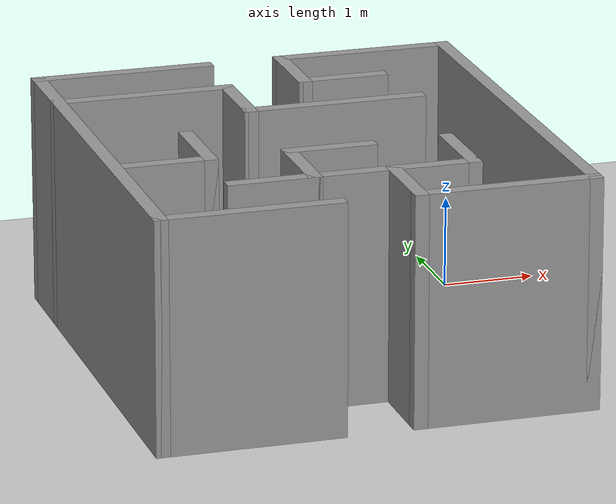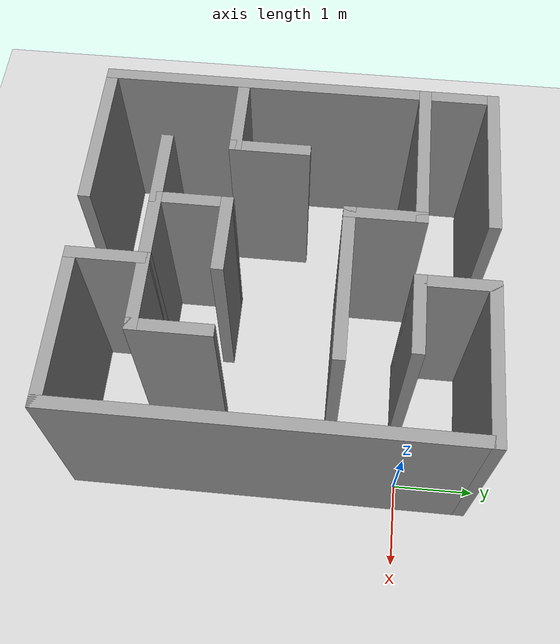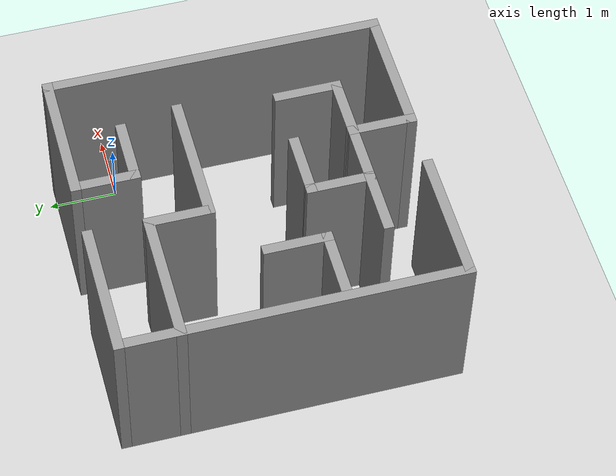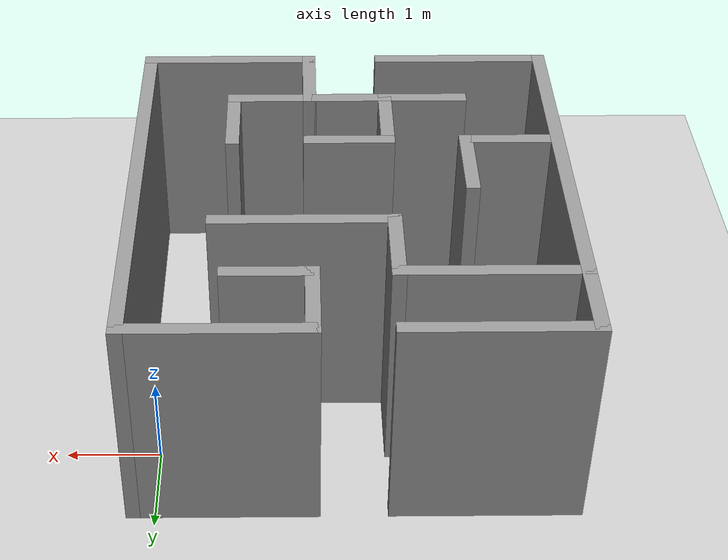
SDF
<sdf version="1.4">
  <world name="default">

    <scene>
      <ambient>0.4 0.4 0.4 1</ambient>
      <background>0.7 0.7 0.7 1</background>
      <shadows>true</shadows>
    </scene>

    <!-- A global light source -->
    <include>
      <uri>model://sun</uri>
    </include>

    <!-- A ground plane -->
    <include>
      <uri>model://ground_plane</uri>
    </include>

    <!-- My Maze -->
    <include>
      <uri>model://maze_1</uri>
	<pose>-2.05 -1.60 0 0 0 0</pose>
    </include>

    <physics type="ode">
      <real_time_update_rate>1000.0</real_time_update_rate>
      <max_step_size>0.001</max_step_size>
      <real_time_factor>1</real_time_factor>
      <ode>
        <solver>
          <type>quick</type>
          <iters>150</iters>
          <precon_iters>0</precon_iters>
          <sor>1.400000</sor>
          <use_dynamic_moi_rescaling>1</use_dynamic_moi_rescaling>
        </solver>
        <constraints>
          <cfm>0.00001</cfm>
          <erp>0.2</erp>
          <contact_max_correcting_vel>2000.000000</contact_max_correcting_vel>
          <contact_surface_layer>0.01000</contact_surface_layer>
        </constraints>
      </ode>
    </physics>
  </world>

</sdf>

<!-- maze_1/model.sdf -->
<sdf version='1.6'>
  <model name='maze_1'>
    <pose frame=''>-1.815 -3.255 0 0 -0 0</pose>
    <link name='Wall_0'>
      <collision name='Wall_0_Collision'>
        <geometry>
          <box>
            <size>5 0.15 2.5</size>
          </box>
        </geometry>
        <pose frame=''>0 0 1.25 0 -0 0</pose>
      </collision>
      <visual name='Wall_0_Visual'>
        <pose frame=''>0 0 1.25 0 -0 0</pose>
        <geometry>
          <box>
            <size>5 0.15 2.5</size>
          </box>
        </geometry>
        <material>
          <script>
            <uri>file://media/materials/scripts/gazebo.material</uri>
            <name>Gazebo/Grey</name>
          </script>
          <ambient>1 1 1 1</ambient>
        </material>
        <meta>
          <layer>0</layer>
        </meta>
      </visual>
      <pose frame=''>-2.275 -0 0 0 -0 -1.5708</pose>
    </link>
    <link name='Wall_1'>
      <collision name='Wall_1_Collision'>
        <geometry>
          <box>
            <size>2 0.15 2.5</size>
          </box>
        </geometry>
        <pose frame=''>0 0 1.25 0 -0 0</pose>
      </collision>
      <visual name='Wall_1_Visual'>
        <pose frame=''>0 0 1.25 0 -0 0</pose>
        <geometry>
          <box>
            <size>2 0.15 2.5</size>
          </box>
        </geometry>
        <material>
          <script>
            <uri>file://media/materials/scripts/gazebo.material</uri>
            <name>Gazebo/Grey</name>
          </script>
          <ambient>1 1 1 1</ambient>
        </material>
        <meta>
          <layer>0</layer>
        </meta>
      </visual>
      <pose frame=''>-1.35 -2.425 0 0 -0 0</pose>
    </link>
    <link name='Wall_10'>
      <collision name='Wall_10_Collision'>
        <geometry>
          <box>
            <size>1 0.15 2.5</size>
          </box>
        </geometry>
        <pose frame=''>0 0 1.25 0 -0 0</pose>
      </collision>
      <visual name='Wall_10_Visual'>
        <pose frame=''>0 0 1.25 0 -0 0</pose>
        <geometry>
          <box>
            <size>1 0.15 2.5</size>
          </box>
        </geometry>
        <material>
          <script>
            <uri>file://media/materials/scripts/gazebo.material</uri>
            <name>Gazebo/Grey</name>
          </script>
          <ambient>1 1 1 1</ambient>
        </material>
        <meta>
          <layer>0</layer>
        </meta>
      </visual>
      <pose frame=''>0.85 1.575 0 0 -0 0</pose>
    </link>
    <link name='Wall_12'>
      <collision name='Wall_12_Collision'>
        <geometry>
          <box>
            <size>1 0.15 2.5</size>
          </box>
        </geometry>
        <pose frame=''>0 0 1.25 0 -0 0</pose>
      </collision>
      <visual name='Wall_12_Visual'>
        <pose frame=''>0 0 1.25 0 -0 0</pose>
        <geometry>
          <box>
            <size>1 0.15 2.5</size>
          </box>
        </geometry>
        <material>
          <script>
            <uri>file://media/materials/scripts/gazebo.material</uri>
            <name>Gazebo/Grey</name>
          </script>
          <ambient>1 1 1 1</ambient>
        </material>
        <meta>
          <layer>0</layer>
        </meta>
      </visual>
      <pose frame=''>0.425 -2 0 0 -0 1.5708</pose>
    </link>
    <link name='Wall_13'>
      <collision name='Wall_13_Collision'>
        <geometry>
          <box>
            <size>1 0.15 2.5</size>
          </box>
        </geometry>
        <pose frame=''>0 0 1.25 0 -0 0</pose>
      </collision>
      <visual name='Wall_13_Visual'>
        <pose frame=''>0 0 1.25 0 -0 0</pose>
        <geometry>
          <box>
            <size>1 0.15 2.5</size>
          </box>
        </geometry>
        <material>
          <script>
            <uri>file://media/materials/scripts/gazebo.material</uri>
            <name>Gazebo/Grey</name>
          </script>
          <ambient>1 1 1 1</ambient>
        </material>
        <meta>
          <layer>0</layer>
        </meta>
      </visual>
      <pose frame=''>0 -1.575 0 0 -0 3.14159</pose>
    </link>
    <link name='Wall_14'>
      <collision name='Wall_14_Collision'>
        <geometry>
          <box>
            <size>1 0.15 2.5</size>
          </box>
        </geometry>
        <pose frame=''>0 0 1.25 0 -0 0</pose>
      </collision>
      <visual name='Wall_14_Visual'>
        <pose frame=''>0 0 1.25 0 -0 0</pose>
        <geometry>
          <box>
            <size>1 0.15 2.5</size>
          </box>
        </geometry>
        <material>
          <script>
            <uri>file://media/materials/scripts/gazebo.material</uri>
            <name>Gazebo/Grey</name>
          </script>
          <ambient>1 1 1 1</ambient>
        </material>
        <meta>
          <layer>0</layer>
        </meta>
      </visual>
      <pose frame=''>-0.425 -1.15 0 0 -0 1.5708</pose>
    </link>
    <link name='Wall_15'>
      <collision name='Wall_15_Collision'>
        <geometry>
          <box>
            <size>1 0.15 2.5</size>
          </box>
        </geometry>
        <pose frame=''>0 0 1.25 0 -0 0</pose>
      </collision>
      <visual name='Wall_15_Visual'>
        <pose frame=''>0 0 1.25 0 -0 0</pose>
        <geometry>
          <box>
            <size>1 0.15 2.5</size>
          </box>
        </geometry>
        <material>
          <script>
            <uri>file://media/materials/scripts/gazebo.material</uri>
            <name>Gazebo/Grey</name>
          </script>
          <ambient>1 1 1 1</ambient>
        </material>
        <meta>
          <layer>0</layer>
        </meta>
      </visual>
      <pose frame=''>0 -0.725 0 0 -0 0</pose>
    </link>
    <link name='Wall_17'>
      <collision name='Wall_17_Collision'>
        <geometry>
          <box>
            <size>1 0.15 2.5</size>
          </box>
        </geometry>
        <pose frame=''>0 0 1.25 0 -0 0</pose>
      </collision>
      <visual name='Wall_17_Visual'>
        <pose frame=''>0 0 1.25 0 -0 0</pose>
        <geometry>
          <box>
            <size>1 0.15 2.5</size>
          </box>
        </geometry>
        <material>
          <script>
            <uri>file://media/materials/scripts/gazebo.material</uri>
            <name>Gazebo/Grey</name>
          </script>
          <ambient>1 1 1 1</ambient>
        </material>
        <meta>
          <layer>0</layer>
        </meta>
      </visual>
      <pose frame=''>0.85 -1.575 0 0 -0 0</pose>
    </link>
    <link name='Wall_18'>
      <collision name='Wall_18_Collision'>
        <geometry>
          <box>
            <size>1 0.15 2.5</size>
          </box>
        </geometry>
        <pose frame=''>0 0 1.25 0 -0 0</pose>
      </collision>
      <visual name='Wall_18_Visual'>
        <pose frame=''>0 0 1.25 0 -0 0</pose>
        <geometry>
          <box>
            <size>1 0.15 2.5</size>
          </box>
        </geometry>
        <material>
          <script>
            <uri>file://media/materials/scripts/gazebo.material</uri>
            <name>Gazebo/Grey</name>
          </script>
          <ambient>1 1 1 1</ambient>
        </material>
        <meta>
          <layer>0</layer>
        </meta>
      </visual>
      <pose frame=''>1.275 -1.15 0 0 -0 1.5708</pose>
    </link>
    <link name='Wall_20'>
      <collision name='Wall_20_Collision'>
        <geometry>
          <box>
            <size>1 0.15 2.5</size>
          </box>
        </geometry>
        <pose frame=''>0 0 1.25 0 -0 0</pose>
      </collision>
      <visual name='Wall_20_Visual'>
        <pose frame=''>0 0 1.25 0 -0 0</pose>
        <geometry>
          <box>
            <size>1 0.15 2.5</size>
          </box>
        </geometry>
        <material>
          <script>
            <uri>file://media/materials/scripts/gazebo.material</uri>
            <name>Gazebo/Grey</name>
          </script>
          <ambient>1 1 1 1</ambient>
        </material>
        <meta>
          <layer>0</layer>
        </meta>
      </visual>
      <pose frame=''>-0.85 -1.575 0 0 -0 3.14159</pose>
    </link>
    <link name='Wall_23'>
      <collision name='Wall_23_Collision'>
        <geometry>
          <box>
            <size>1 0.15 2.5</size>
          </box>
        </geometry>
        <pose frame=''>0 0 1.25 0 -0 0</pose>
      </collision>
      <visual name='Wall_23_Visual'>
        <pose frame=''>0 0 1.25 0 -0 0</pose>
        <geometry>
          <box>
            <size>1 0.15 2.5</size>
          </box>
        </geometry>
        <material>
          <script>
            <uri>file://media/materials/scripts/gazebo.material</uri>
            <name>Gazebo/Grey</name>
          </script>
          <ambient>1 1 1 1</ambient>
        </material>
        <meta>
          <layer>0</layer>
        </meta>
      </visual>
      <pose frame=''>-1.7 -0.725 0 0 -0 3.14159</pose>
    </link>
    <link name='Wall_25'>
      <collision name='Wall_25_Collision'>
        <geometry>
          <box>
            <size>1 0.15 2.5</size>
          </box>
        </geometry>
        <pose frame=''>0 0 1.25 0 -0 0</pose>
      </collision>
      <visual name='Wall_25_Visual'>
        <pose frame=''>0 0 1.25 0 -0 0</pose>
        <geometry>
          <box>
            <size>1 0.15 2.5</size>
          </box>
        </geometry>
        <material>
          <script>
            <uri>file://media/materials/scripts/gazebo.material</uri>
            <name>Gazebo/Grey</name>
          </script>
          <ambient>1 1 1 1</ambient>
        </material>
        <meta>
          <layer>0</layer>
        </meta>
      </visual>
      <pose frame=''>-1.275 -0.3 0 0 -0 1.5708</pose>
    </link>
    <link name='Wall_28'>
      <collision name='Wall_28_Collision'>
        <geometry>
          <box>
            <size>2 0.15 2.5</size>
          </box>
        </geometry>
        <pose frame=''>0 0 1.25 0 -0 0</pose>
      </collision>
      <visual name='Wall_28_Visual'>
        <pose frame=''>0 0 1.25 0 -0 0</pose>
        <geometry>
          <box>
            <size>2 0.15 2.5</size>
          </box>
        </geometry>
        <material>
          <script>
            <uri>file://media/materials/scripts/gazebo.material</uri>
            <name>Gazebo/Grey</name>
          </script>
          <ambient>1 1 1 1</ambient>
        </material>
        <meta>
          <layer>0</layer>
        </meta>
      </visual>
      <pose frame=''>-1.35 1.575 0 0 -0 3.14159</pose>
    </link>
    <link name='Wall_3'>
      <collision name='Wall_3_Collision'>
        <geometry>
          <box>
            <size>2 0.15 2.5</size>
          </box>
        </geometry>
        <pose frame=''>0 0 1.25 0 -0 0</pose>
      </collision>
      <visual name='Wall_3_Visual'>
        <pose frame=''>0 0 1.25 0 -0 0</pose>
        <geometry>
          <box>
            <size>2 0.15 2.5</size>
          </box>
        </geometry>
        <material>
          <script>
            <uri>file://media/materials/scripts/gazebo.material</uri>
            <name>Gazebo/Grey</name>
          </script>
          <ambient>1 1 1 1</ambient>
        </material>
        <meta>
          <layer>0</layer>
        </meta>
      </visual>
      <pose frame=''>1.35 -2.425 0 0 -0 0</pose>
    </link>
    <link name='Wall_30'>
      <collision name='Wall_30_Collision'>
        <geometry>
          <box>
            <size>1 0.15 2.5</size>
          </box>
        </geometry>
        <pose frame=''>0 0 1.25 0 -0 0</pose>
      </collision>
      <visual name='Wall_30_Visual'>
        <pose frame=''>0 0 1.25 0 -0 0</pose>
        <geometry>
          <box>
            <size>1 0.15 2.5</size>
          </box>
        </geometry>
        <material>
          <script>
            <uri>file://media/materials/scripts/gazebo.material</uri>
            <name>Gazebo/Grey</name>
          </script>
          <ambient>1 1 1 1</ambient>
        </material>
        <meta>
          <layer>0</layer>
        </meta>
      </visual>
      <pose frame=''>-0.425 1.15 0 0 -0 -1.5708</pose>
    </link>
    <link name='Wall_31'>
      <collision name='Wall_31_Collision'>
        <geometry>
          <box>
            <size>2 0.15 2.5</size>
          </box>
        </geometry>
        <pose frame=''>0 0 1.25 0 -0 0</pose>
      </collision>
      <visual name='Wall_31_Visual'>
        <pose frame=''>0 0 1.25 0 -0 0</pose>
        <geometry>
          <box>
            <size>2 0.15 2.5</size>
          </box>
        </geometry>
        <material>
          <script>
            <uri>file://media/materials/scripts/gazebo.material</uri>
            <name>Gazebo/Grey</name>
          </script>
          <ambient>1 1 1 1</ambient>
        </material>
        <meta>
          <layer>0</layer>
        </meta>
      </visual>
      <pose frame=''>0.5 0.725 0 0 -0 0</pose>
    </link>
    <link name='Wall_4'>
      <collision name='Wall_4_Collision'>
        <geometry>
          <box>
            <size>5 0.15 2.5</size>
          </box>
        </geometry>
        <pose frame=''>0 0 1.25 0 -0 0</pose>
      </collision>
      <visual name='Wall_4_Visual'>
        <pose frame=''>0 0 1.25 0 -0 0</pose>
        <geometry>
          <box>
            <size>5 0.15 2.5</size>
          </box>
        </geometry>
        <material>
          <script>
            <uri>file://media/materials/scripts/gazebo.material</uri>
            <name>Gazebo/Grey</name>
          </script>
          <ambient>1 1 1 1</ambient>
        </material>
        <meta>
          <layer>0</layer>
        </meta>
      </visual>
      <pose frame=''>2.275 -0 0 0 -0 1.5708</pose>
    </link>
    <link name='Wall_5'>
      <collision name='Wall_5_Collision'>
        <geometry>
          <box>
            <size>2 0.15 2.5</size>
          </box>
        </geometry>
        <pose frame=''>0 0 1.25 0 -0 0</pose>
      </collision>
      <visual name='Wall_5_Visual'>
        <pose frame=''>0 0 1.25 0 -0 0</pose>
        <geometry>
          <box>
            <size>2 0.15 2.5</size>
          </box>
        </geometry>
        <material>
          <script>
            <uri>file://media/materials/scripts/gazebo.material</uri>
            <name>Gazebo/Grey</name>
          </script>
          <ambient>1 1 1 1</ambient>
        </material>
        <meta>
          <layer>0</layer>
        </meta>
      </visual>
      <pose frame=''>1.35 2.425 0 0 -0 3.14159</pose>
    </link>
    <link name='Wall_7'>
      <collision name='Wall_7_Collision'>
        <geometry>
          <box>
            <size>2 0.15 2.5</size>
          </box>
        </geometry>
        <pose frame=''>0 0 1.25 0 -0 0</pose>
      </collision>
      <visual name='Wall_7_Visual'>
        <pose frame=''>0 0 1.25 0 -0 0</pose>
        <geometry>
          <box>
            <size>2 0.15 2.5</size>
          </box>
        </geometry>
        <material>
          <script>
            <uri>file://media/materials/scripts/gazebo.material</uri>
            <name>Gazebo/Grey</name>
          </script>
          <ambient>1 1 1 1</ambient>
        </material>
        <meta>
          <layer>0</layer>
        </meta>
      </visual>
      <pose frame=''>-1.35 2.425 0 0 -0 3.14159</pose>
    </link>
    <link name='Wall_9'>
      <collision name='Wall_9_Collision'>
        <geometry>
          <box>
            <size>1 0.15 2.5</size>
          </box>
        </geometry>
        <pose frame=''>0 0 1.25 0 -0 0</pose>
      </collision>
      <visual name='Wall_9_Visual'>
        <pose frame=''>0 0 1.25 0 -0 0</pose>
        <geometry>
          <box>
            <size>1 0.15 2.5</size>
          </box>
        </geometry>
        <material>
          <script>
            <uri>file://media/materials/scripts/gazebo.material</uri>
            <name>Gazebo/Grey</name>
          </script>
          <ambient>1 1 1 1</ambient>
        </material>
        <meta>
          <layer>0</layer>
        </meta>
      </visual>
      <pose frame=''>0.425 2 0 0 -0 -1.5708</pose>
    </link>
    <static>1</static>
  </model>
</sdf>
